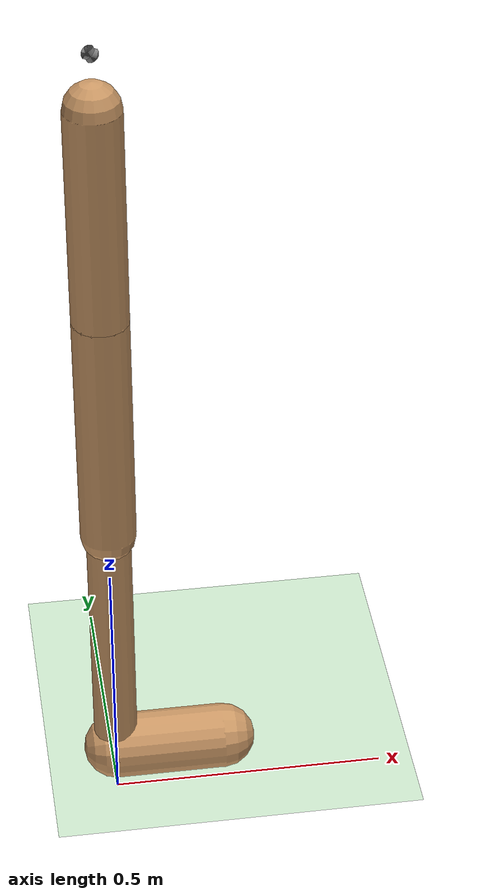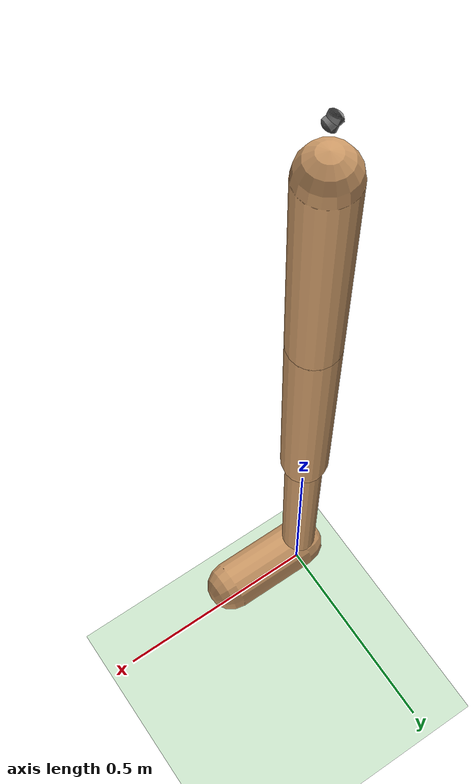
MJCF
<mujoco model="walker2d">
  <compiler angle="degree" coordinate="global" inertiafromgeom="true"/>
  <default>
    <joint armature="0.01" damping=".1" limited="true"/>
    <geom conaffinity="0" condim="3" contype="1" density="1000" friction=".7 .1 .1" rgba="0.8 0.6 .4 1"/>
  </default>
  <option integrator="RK4" timestep="0.002"/>
  <worldbody>
    <light cutoff="100" diffuse="1 1 1" dir="-0 0 -1.3" directional="true" exponent="1" pos="0 0 1.3" specular=".1 .1 .1"/>
    <geom conaffinity="1" condim="3" name="floor" pos="0 0 0" rgba="0.8 0.9 0.8 1" size="15 15 15" type="plane" material="MatPlane"/>
    <geom conaffinity="1" condim="3" name="floor_1" pos="18 0 0" rgba="0.8 0.9 0.8 1" size="2 15 15" type="plane" material="MatPlane"/>
    <geom conaffinity="1" condim="3" name="floor_2" pos="24 0 0" rgba="0.8 0.9 0.8 1" size="3 15 15" type="plane" material="MatPlane"/>
    <geom conaffinity="1" condim="3" name="floor_3" pos="30 0 0" rgba="0.8 0.9 0.8 1" size="2 15 15" type="plane" material="MatPlane"/>
    <geom conaffinity="1" condim="3" name="floor_4" pos="37 0 0" rgba="0.8 0.9 0.8 1" size="3 15 15" type="plane" material="MatPlane"/>
    <body name="torso" pos="0 0 1.25">
    		<site name="range_site_1" pos="0 0 1.55" size="0.01 0.01 0.01" euler="0 110 0" type="cylinder"/>
				<site name="range_site_2" pos="0 0 1.55" size="0.01 0.01 0.01" euler="0 115 0" type="cylinder"/>
				<site name="range_site_3" pos="0 0 1.55" size="0.01 0.01 0.01" euler="0 120 0" type="cylinder"/>
				<site name="range_site_4" pos="0 0 1.55" size="0.01 0.01 0.01" euler="0 125 0" type="cylinder"/>
				<site name="range_site_5" pos="0 0 1.55" size="0.01 0.01 0.01" euler="0 130 0" type="cylinder"/>
				<site name="range_site_6" pos="0 0 1.55" size="0.01 0.01 0.01" euler="0 135 0" type="cylinder"/>
				<site name="range_site_7" pos="0 0 1.55" size="0.01 0.01 0.01" euler="0 140 0" type="cylinder"/>
				<site name="range_site_8" pos="0 0 1.55" size="0.01 0.01 0.01" euler="0 145 0" type="cylinder"/>
				<site name="range_site_9" pos="0 0 1.55" size="0.01 0.01 0.01" euler="0 150 0" type="cylinder"/>
				<site name="range_site_10" pos="0 0 1.55" size="0.01 0.01 0.01" euler="0 155 0" type="cylinder"/>
				<site name="accel_site" pos="0 0 1.35" size="0.01 0.01 0.01" euler="0 0 0" type="cylinder"/>
				<site name="gyro_site" pos="0 0 1.35" size="0.01 0.01 0.01" euler="0 0 0" type="cylinder"/>
      <camera name="track" mode="trackcom" pos="0 -3 1" xyaxes="1 0 0 0 0 1"/>
      <joint armature="0" axis="1 0 0" damping="0" limited="false" name="rootx" pos="0 0 0" stiffness="0" type="slide"/>
      <joint armature="0" axis="0 0 1" damping="0" limited="false" name="rootz" pos="0 0 0" ref="1.25" stiffness="0" type="slide"/>
      <joint armature="0" axis="0 1 0" damping="0" limited="false" name="rooty" pos="0 0 1.25" stiffness="0" type="hinge"/>
      <geom friction="0.9" fromto="0 0 1.45 0 0 1.05" name="torso_geom" size="0.05" type="capsule"/>
      <body name="thigh" pos="0 0 1.05">
        <joint axis="0 -1 0" name="thigh_joint" pos="0 0 1.05" range="-150 0" type="hinge"/>
        <geom friction="0.9" fromto="0 0 1.05 0 0 0.6" name="thigh_geom" size="0.05" type="capsule"/>
        <body name="leg" pos="0 0 0.35">
          <joint axis="0 -1 0" name="leg_joint" pos="0 0 0.6" range="-150 0" type="hinge"/>
          <geom friction="0.9" fromto="0 0 0.6 0 0 0.1" name="leg_geom" size="0.04" type="capsule"/>
          <body name="foot" pos="0.2 0 0">
            <joint axis="0 -1 0" name="foot_joint" pos="0 0 0.1" range="-45 45" type="hinge"/>
            <geom friction="0.9" fromto="-0.0 0 0.1 0.2 0 0.1" name="foot_geom" size="0.06" type="capsule"/>
          </body>
        </body>
      </body>
      <!-- copied and then replace thigh->thigh_left, leg->leg_left, foot->foot_right -->
      <body name="thigh_left" pos="0 0 1.05">
        <joint axis="0 -1 0" name="thigh_left_joint" pos="0 0 1.05" range="-150 0" type="hinge"/>
        <geom friction="0.9" fromto="0 0 1.05 0 0 0.6" name="thigh_left_geom" rgba=".7 .3 .6 1" size="0.05" type="capsule"/>
        <body name="leg_left" pos="0 0 0.35">
          <joint axis="0 -1 0" name="leg_left_joint" pos="0 0 0.6" range="-150 0" type="hinge"/>
          <geom friction="0.9" fromto="0 0 0.6 0 0 0.1" name="leg_left_geom" rgba=".7 .3 .6 1" size="0.04" type="capsule"/>
          <body name="foot_left" pos="0.2 0 0">
            <joint axis="0 -1 0" name="foot_left_joint" pos="0 0 0.1" range="-45 45" type="hinge"/>
            <geom friction="1.9" fromto="-0.0 0 0.1 0.2 0 0.1" name="foot_left_geom" rgba=".7 .3 .6 1" size="0.06" type="capsule"/>
          </body>
        </body>
      </body>
    </body>
  </worldbody>
  <actuator>
    <motor ctrllimited="true" ctrlrange="-1.0 1.0" gear="100" joint="thigh_joint"/>
    <motor ctrllimited="true" ctrlrange="-1.0 1.0" gear="100" joint="leg_joint"/>
    <motor ctrllimited="true" ctrlrange="-1.0 1.0" gear="100" joint="foot_joint"/>
    <motor ctrllimited="true" ctrlrange="-1.0 1.0" gear="100" joint="thigh_left_joint"/>
    <motor ctrllimited="true" ctrlrange="-1.0 1.0" gear="100" joint="leg_left_joint"/>
    <motor ctrllimited="true" ctrlrange="-1.0 1.0" gear="100" joint="foot_left_joint"/>
  </actuator>
    <asset>
        <texture type="skybox" builtin="gradient" rgb1=".4 .5 .6" rgb2="0 0 0"
            width="100" height="100"/>
        <texture builtin="flat" height="1278" mark="cross" markrgb="1 1 1" name="texgeom" random="0.01" rgb1="0.8 0.6 0.4" rgb2="0.8 0.6 0.4" type="cube" width="127"/>
        <texture builtin="checker" height="100" name="texplane" rgb1="0 0 0" rgb2="0.8 0.8 0.8" type="2d" width="100"/>
        <material name="MatPlane" reflectance="0.5" shininess="1" specular="1" texrepeat="60 60" texture="texplane"/>
        <material name="geom" texture="texgeom" texuniform="true"/>
    </asset>
  <sensor>
    <rangefinder name="range_sensor_1" site="range_site_1" cutoff="10" />
		<rangefinder name="range_sensor_2" site="range_site_2" cutoff="10" />
		<rangefinder name="range_sensor_3" site="range_site_3" cutoff="10" />
		<rangefinder name="range_sensor_4" site="range_site_4" cutoff="10" />
		<rangefinder name="range_sensor_5" site="range_site_5" cutoff="10" />
		<rangefinder name="range_sensor_6" site="range_site_6" cutoff="10" />
  </sensor>
</mujoco>
